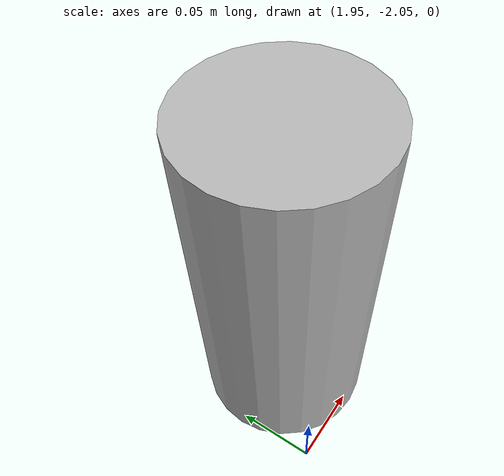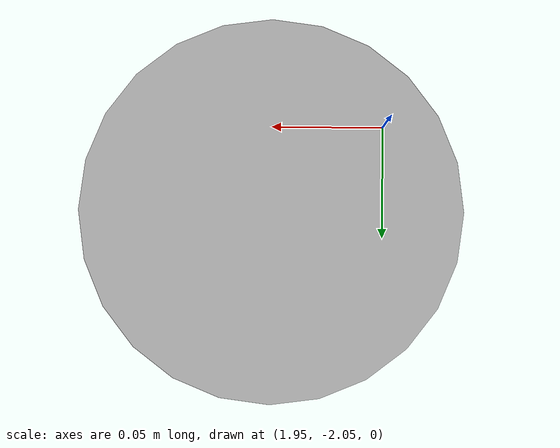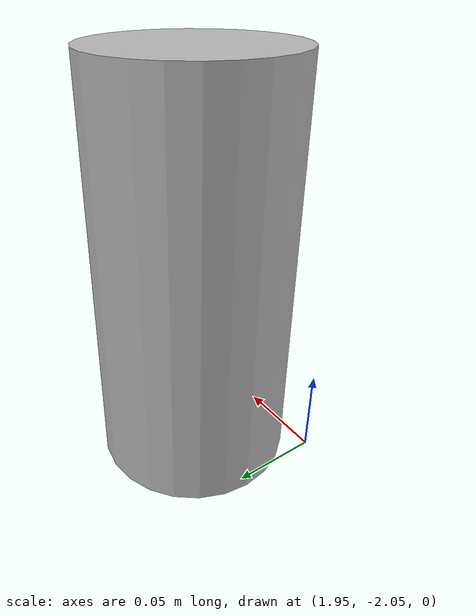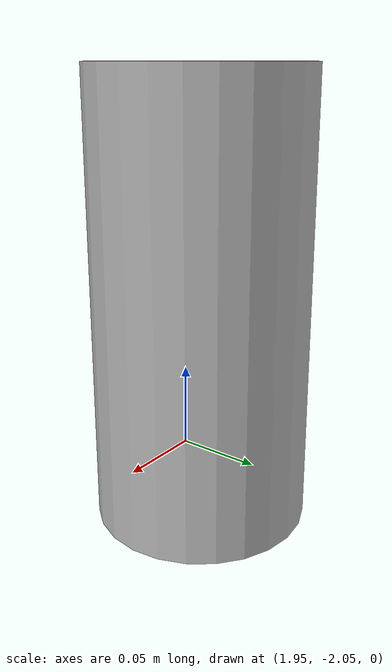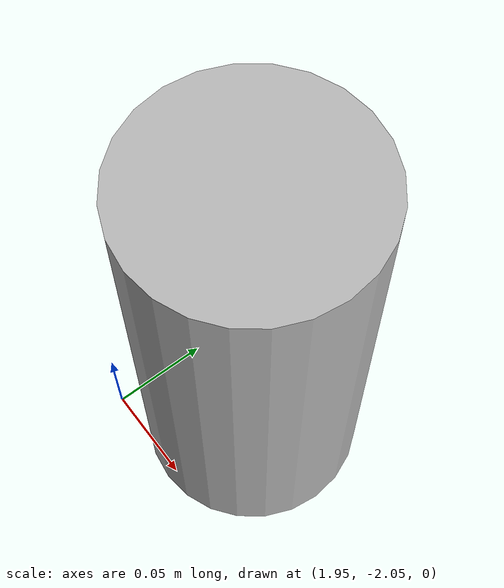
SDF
<sdf version="1.6">
 <world name="myworld">
  <include><uri>model://CropWithWeed</uri><name>Crop_with_weed</name><pose>2 -2 0   0 0 0</pose></include>
 </world>
</sdf>
